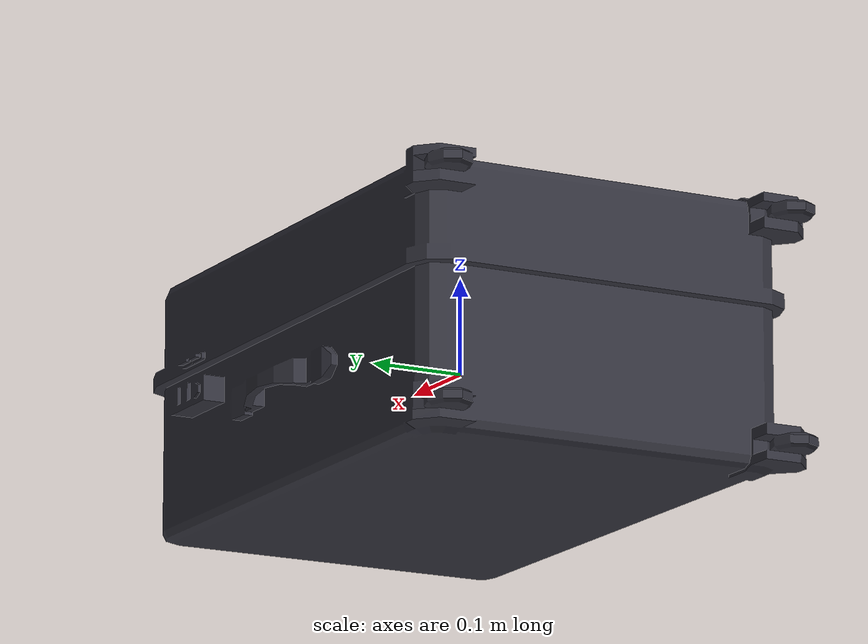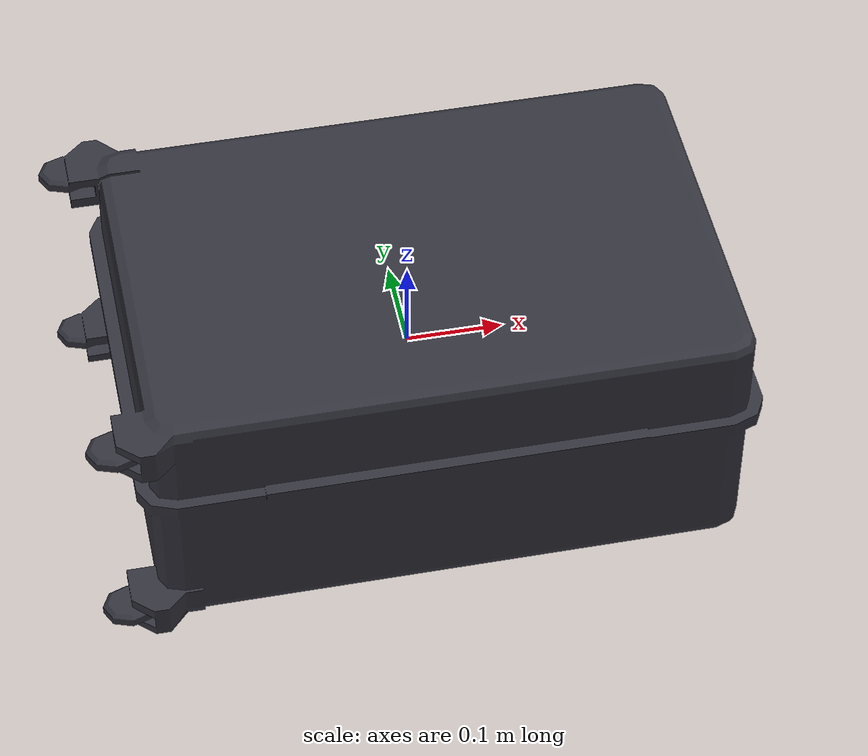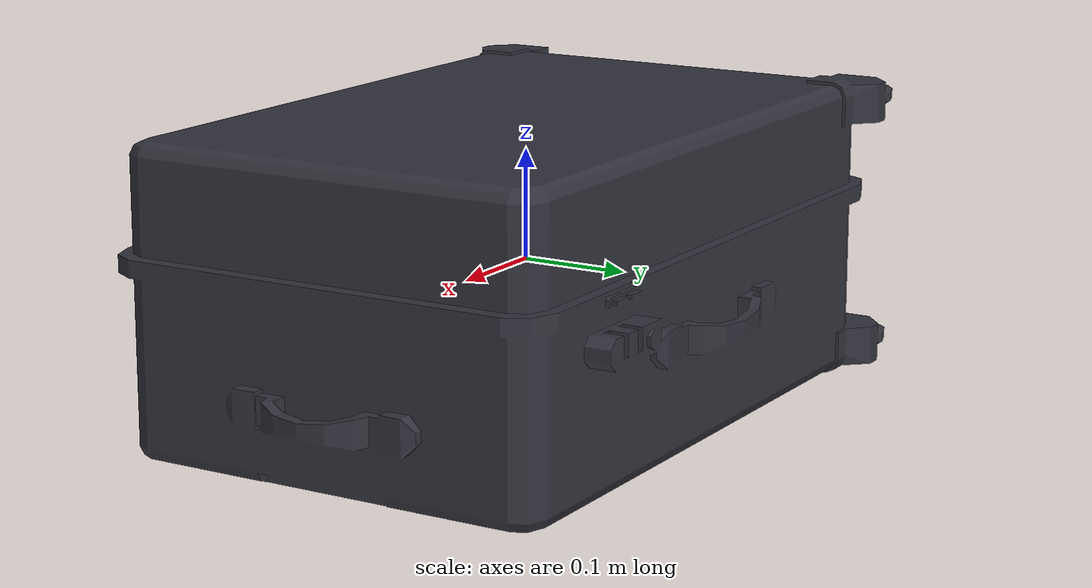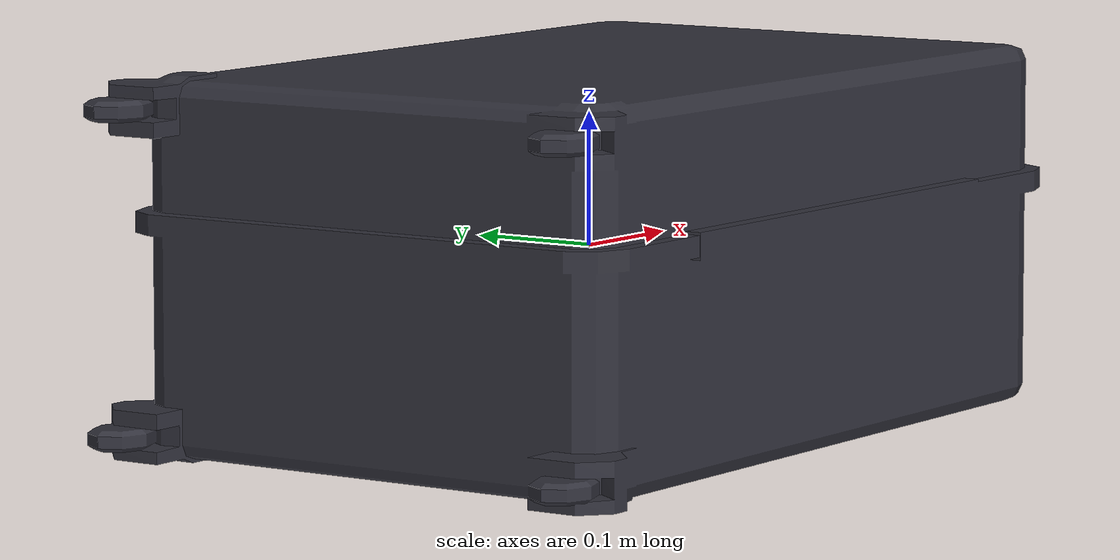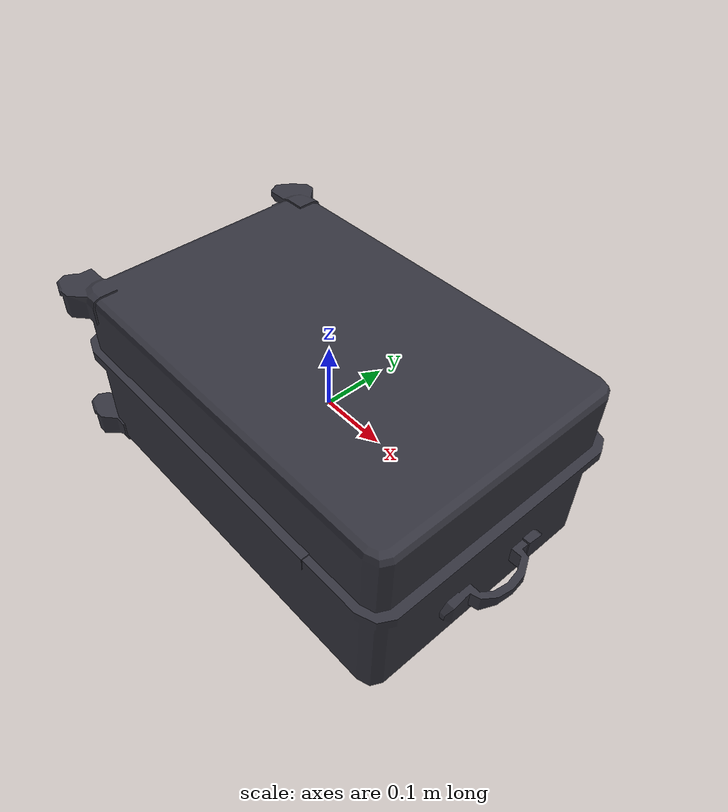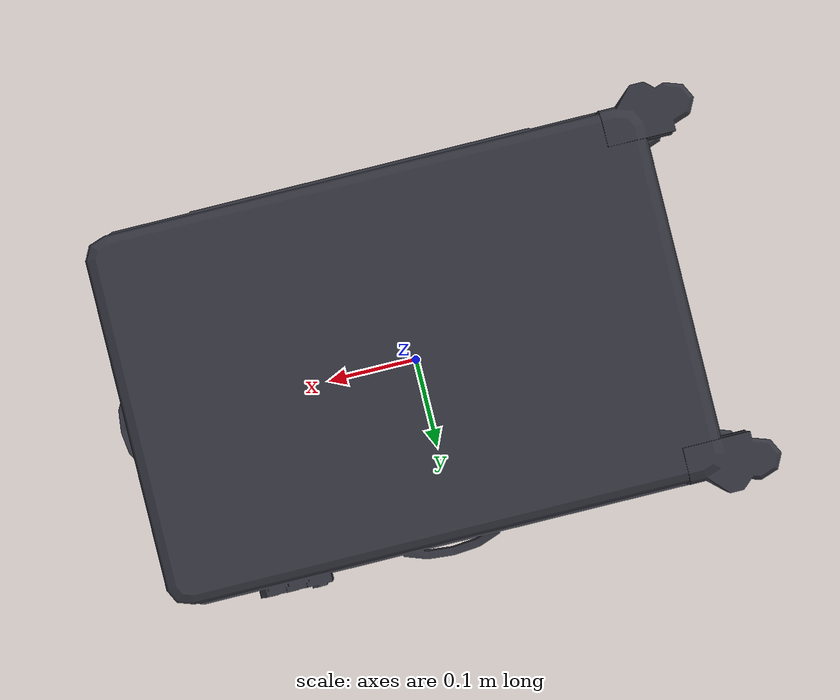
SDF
<?xml version="1.0"?>
<sdf version="1.6">
  <!-- Suitcase suitcase_loafbrr visual+collision 0.700 x 0.450 x 0.280 m, 15.00 kg -->
  <model name="suitcase_loafbrr_medium">
    <link name="suitcase_link">
      <inertial>
        <mass>15.0000</mass>
        <inertia>
          <ixx>0.351125</ixx><ixy>0</ixy><ixz>0</ixz>
          <iyy>0.710500</iyy><iyz>0</iyz>
          <izz>0.865625</izz>
        </inertia>
      </inertial>
      <visual name="suitcase_loafbrr_medium_visual">
        <geometry>
          <mesh>
            <uri>model://suitcase_loafbrr_medium/meshes/suitcase.stl</uri>
            <scale>1.000000 1.000000 1.000000</scale>
          </mesh>
        </geometry>
        <material>
          <ambient>0.12 0.12 0.15 1</ambient>
          <diffuse>0.20 0.20 0.24 1</diffuse>
        </material>
      </visual>
      <collision name="body_collision">
        <geometry>
          <mesh>
            <uri>model://suitcase_loafbrr_medium/meshes/suitcase.stl</uri>
            <scale>1.000000 1.000000 1.000000</scale>
          </mesh>
        </geometry>
        <surface>
          <friction><ode><mu>0.6</mu><mu2>0.6</mu2></ode></friction>
        </surface>
      </collision>
    </link>
  </model>
</sdf>
